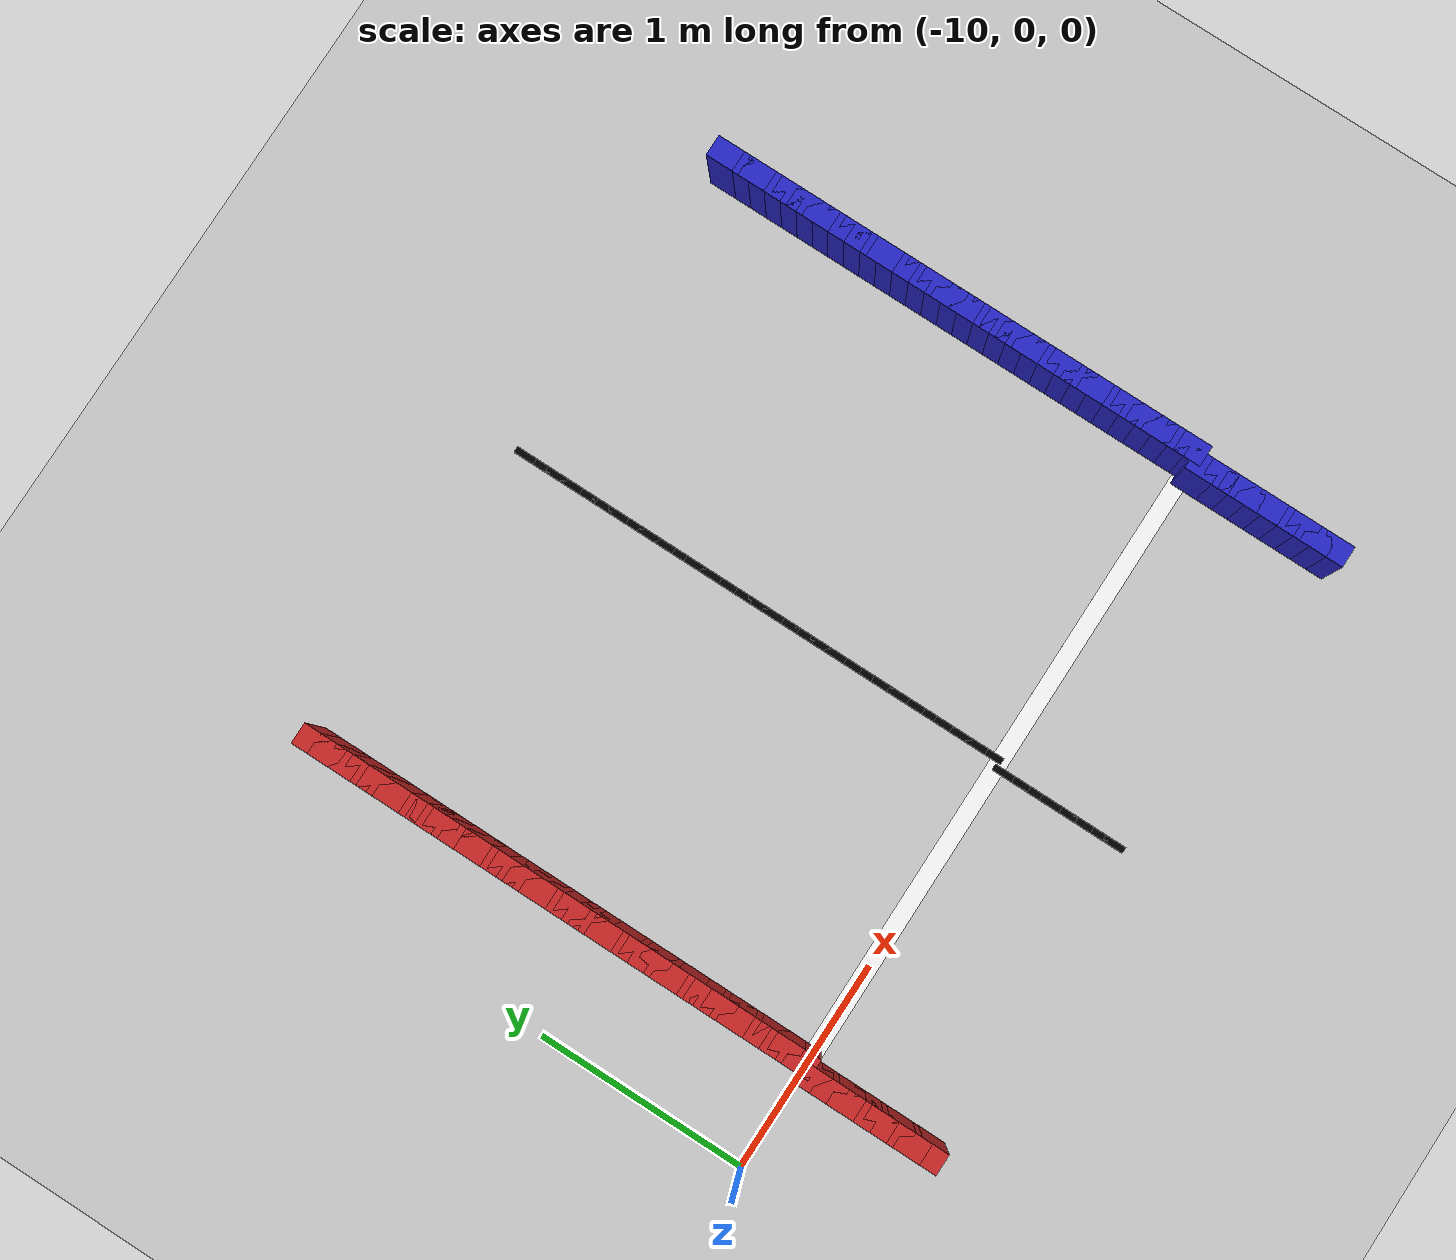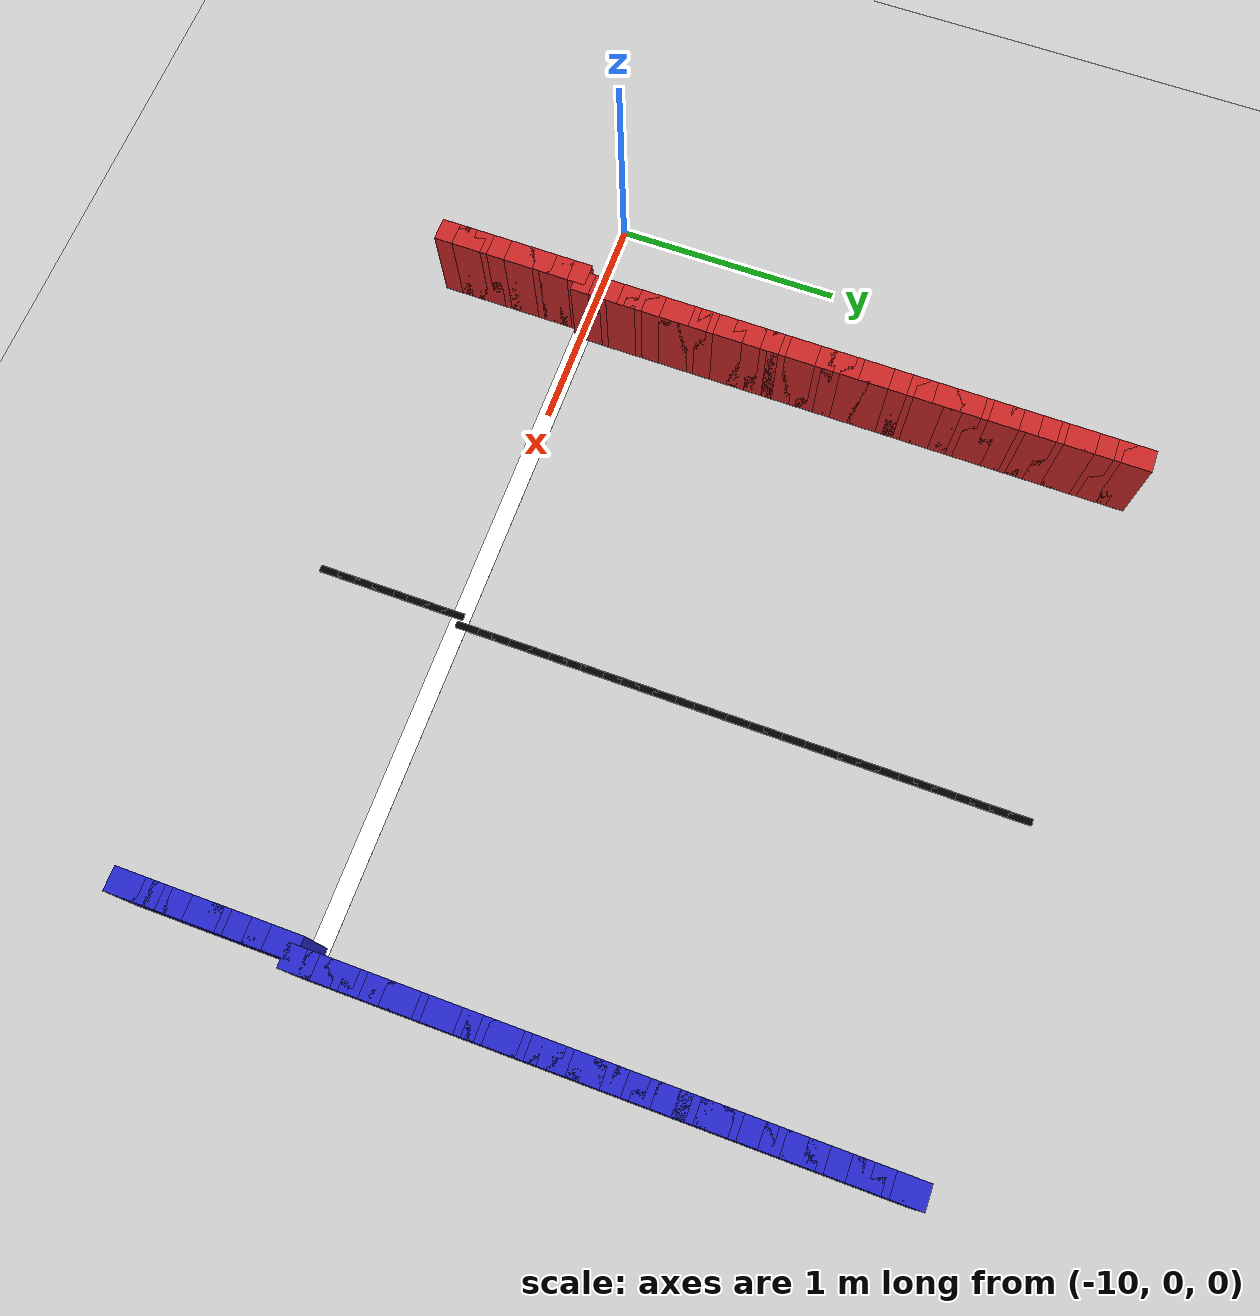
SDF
<sdf version="1.6">
 <world name="new_race_track">
  <include><uri>model://ground_plane</uri></include>
  <include><uri>model://sun</uri></include>
  <model name="iw_0">
   <static>true</static>
   <pose>-6.5000 -0.0400 0.200 0 0 -1.5708</pose>
   <link name="l">
    <collision name="c"><geometry><box><size>0.1300 0.1 0.4</size></box></geometry></collision>
    <visual name="v">
     <geometry><box><size>0.1300 0.1 0.4</size></box></geometry>
     <material><ambient>0.15 0.15 0.8 1</ambient><diffuse>0.15 0.15 0.8 1</diffuse></material>
    </visual>
   </link>
  </model>
  <model name="iw_1">
   <static>true</static>
   <pose>-6.5000 -0.1200 0.200 0 0 -1.5708</pose>
   <link name="l">
    <collision name="c"><geometry><box><size>0.1300 0.1 0.4</size></box></geometry></collision>
    <visual name="v">
     <geometry><box><size>0.1300 0.1 0.4</size></box></geometry>
     <material><ambient>0.15 0.15 0.8 1</ambient><diffuse>0.15 0.15 0.8 1</diffuse></material>
    </visual>
   </link>
  </model>
  <model name="iw_2">
   <static>true</static>
   <pose>-6.5000 -0.2000 0.200 0 0 -1.5708</pose>
   <link name="l">
    <collision name="c"><geometry><box><size>0.1300 0.1 0.4</size></box></geometry></collision>
    <visual name="v">
     <geometry><box><size>0.1300 0.1 0.4</size></box></geometry>
     <material><ambient>0.15 0.15 0.8 1</ambient><diffuse>0.15 0.15 0.8 1</diffuse></material>
    </visual>
   </link>
  </model>
  <model name="iw_3">
   <static>true</static>
   <pose>-6.5000 -0.2800 0.200 0 0 -1.5708</pose>
   <link name="l">
    <collision name="c"><geometry><box><size>0.1300 0.1 0.4</size></box></geometry></collision>
    <visual name="v">
     <geometry><box><size>0.1300 0.1 0.4</size></box></geometry>
     <material><ambient>0.15 0.15 0.8 1</ambient><diffuse>0.15 0.15 0.8 1</diffuse></material>
    </visual>
   </link>
  </model>
  <model name="iw_4">
   <static>true</static>
   <pose>-6.5000 -0.3600 0.200 0 0 -1.5708</pose>
   <link name="l">
    <collision name="c"><geometry><box><size>0.1300 0.1 0.4</size></box></geometry></collision>
    <visual name="v">
     <geometry><box><size>0.1300 0.1 0.4</size></box></geometry>
     <material><ambient>0.15 0.15 0.8 1</ambient><diffuse>0.15 0.15 0.8 1</diffuse></material>
    </visual>
   </link>
  </model>
  <model name="iw_5">
   <static>true</static>
   <pose>-6.5000 -0.4400 0.200 0 0 -1.5708</pose>
   <link name="l">
    <collision name="c"><geometry><box><size>0.1300 0.1 0.4</size></box></geometry></collision>
    <visual name="v">
     <geometry><box><size>0.1300 0.1 0.4</size></box></geometry>
     <material><ambient>0.15 0.15 0.8 1</ambient><diffuse>0.15 0.15 0.8 1</diffuse></material>
    </visual>
   </link>
  </model>
  <model name="iw_6">
   <static>true</static>
   <pose>-6.5000 -0.5200 0.200 0 0 -1.5708</pose>
   <link name="l">
    <collision name="c"><geometry><box><size>0.1300 0.1 0.4</size></box></geometry></collision>
    <visual name="v">
     <geometry><box><size>0.1300 0.1 0.4</size></box></geometry>
     <material><ambient>0.15 0.15 0.8 1</ambient><diffuse>0.15 0.15 0.8 1</diffuse></material>
    </visual>
   </link>
  </model>
  <model name="iw_7">
   <static>true</static>
   <pose>-6.5000 -0.6000 0.200 0 0 -1.5708</pose>
   <link name="l">
    <collision name="c"><geometry><box><size>0.1300 0.1 0.4</size></box></geometry></collision>
    <visual name="v">
     <geometry><box><size>0.1300 0.1 0.4</size></box></geometry>
     <material><ambient>0.15 0.15 0.8 1</ambient><diffuse>0.15 0.15 0.8 1</diffuse></material>
    </visual>
   </link>
  </model>
  <model name="iw_8">
   <static>true</static>
   <pose>-6.5000 -0.6800 0.200 0 0 -1.5708</pose>
   <link name="l">
    <collision name="c"><geometry><box><size>0.1300 0.1 0.4</size></box></geometry></collision>
    <visual name="v">
     <geometry><box><size>0.1300 0.1 0.4</size></box></geometry>
     <material><ambient>0.15 0.15 0.8 1</ambient><diffuse>0.15 0.15 0.8 1</diffuse></material>
    </visual>
   </link>
  </model>
  <model name="iw_753">
   <static>true</static>
   <pose>-6.4621 2.3600 0.200 0 0 -1.5708</pose>
   <link name="l">
    <collision name="c"><geometry><box><size>0.1300 0.1 0.4</size></box></geometry></collision>
    <visual name="v">
     <geometry><box><size>0.1300 0.1 0.4</size></box></geometry>
     <material><ambient>0.15 0.15 0.8 1</ambient><diffuse>0.15 0.15 0.8 1</diffuse></material>
    </visual>
   </link>
  </model>
  <model name="iw_754">
   <static>true</static>
   <pose>-6.4621 2.2800 0.200 0 0 -1.5708</pose>
   <link name="l">
    <collision name="c"><geometry><box><size>0.1300 0.1 0.4</size></box></geometry></collision>
    <visual name="v">
     <geometry><box><size>0.1300 0.1 0.4</size></box></geometry>
     <material><ambient>0.15 0.15 0.8 1</ambient><diffuse>0.15 0.15 0.8 1</diffuse></material>
    </visual>
   </link>
  </model>
  <model name="iw_755">
   <static>true</static>
   <pose>-6.4621 2.2000 0.200 0 0 -1.5708</pose>
   <link name="l">
    <collision name="c"><geometry><box><size>0.1300 0.1 0.4</size></box></geometry></collision>
    <visual name="v">
     <geometry><box><size>0.1300 0.1 0.4</size></box></geometry>
     <material><ambient>0.15 0.15 0.8 1</ambient><diffuse>0.15 0.15 0.8 1</diffuse></material>
    </visual>
   </link>
  </model>
  <model name="iw_756">
   <static>true</static>
   <pose>-6.4621 2.1200 0.200 0 0 -1.5708</pose>
   <link name="l">
    <collision name="c"><geometry><box><size>0.1300 0.1 0.4</size></box></geometry></collision>
    <visual name="v">
     <geometry><box><size>0.1300 0.1 0.4</size></box></geometry>
     <material><ambient>0.15 0.15 0.8 1</ambient><diffuse>0.15 0.15 0.8 1</diffuse></material>
    </visual>
   </link>
  </model>
  <model name="iw_757">
   <static>true</static>
   <pose>-6.4621 2.0400 0.200 0 0 -1.5708</pose>
   <link name="l">
    <collision name="c"><geometry><box><size>0.1300 0.1 0.4</size></box></geometry></collision>
    <visual name="v">
     <geometry><box><size>0.1300 0.1 0.4</size></box></geometry>
     <material><ambient>0.15 0.15 0.8 1</ambient><diffuse>0.15 0.15 0.8 1</diffuse></material>
    </visual>
   </link>
  </model>
  <model name="iw_758">
   <static>true</static>
   <pose>-6.4621 1.9600 0.200 0 0 -1.5708</pose>
   <link name="l">
    <collision name="c"><geometry><box><size>0.1300 0.1 0.4</size></box></geometry></collision>
    <visual name="v">
     <geometry><box><size>0.1300 0.1 0.4</size></box></geometry>
     <material><ambient>0.15 0.15 0.8 1</ambient><diffuse>0.15 0.15 0.8 1</diffuse></material>
    </visual>
   </link>
  </model>
  <model name="iw_759">
   <static>true</static>
   <pose>-6.4621 1.8800 0.200 0 0 -1.5708</pose>
   <link name="l">
    <collision name="c"><geometry><box><size>0.1300 0.1 0.4</size></box></geometry></collision>
    <visual name="v">
     <geometry><box><size>0.1300 0.1 0.4</size></box></geometry>
     <material><ambient>0.15 0.15 0.8 1</ambient><diffuse>0.15 0.15 0.8 1</diffuse></material>
    </visual>
   </link>
  </model>
  <model name="iw_760">
   <static>true</static>
   <pose>-6.4621 1.8000 0.200 0 0 -1.5708</pose>
   <link name="l">
    <collision name="c"><geometry><box><size>0.1300 0.1 0.4</size></box></geometry></collision>
    <visual name="v">
     <geometry><box><size>0.1300 0.1 0.4</size></box></geometry>
     <material><ambient>0.15 0.15 0.8 1</ambient><diffuse>0.15 0.15 0.8 1</diffuse></material>
    </visual>
   </link>
  </model>
  <model name="iw_761">
   <static>true</static>
   <pose>-6.4621 1.7200 0.200 0 0 -1.5708</pose>
   <link name="l">
    <collision name="c"><geometry><box><size>0.1300 0.1 0.4</size></box></geometry></collision>
    <visual name="v">
     <geometry><box><size>0.1300 0.1 0.4</size></box></geometry>
     <material><ambient>0.15 0.15 0.8 1</ambient><diffuse>0.15 0.15 0.8 1</diffuse></material>
    </visual>
   </link>
  </model>
  <model name="iw_762">
   <static>true</static>
   <pose>-6.4621 1.6400 0.200 0 0 -1.5708</pose>
   <link name="l">
    <collision name="c"><geometry><box><size>0.1300 0.1 0.4</size></box></geometry></collision>
    <visual name="v">
     <geometry><box><size>0.1300 0.1 0.4</size></box></geometry>
     <material><ambient>0.15 0.15 0.8 1</ambient><diffuse>0.15 0.15 0.8 1</diffuse></material>
    </visual>
   </link>
  </model>
  <model name="iw_763">
   <static>true</static>
   <pose>-6.4621 1.5600 0.200 0 0 -1.5708</pose>
   <link name="l">
    <collision name="c"><geometry><box><size>0.1300 0.1 0.4</size></box></geometry></collision>
    <visual name="v">
     <geometry><box><size>0.1300 0.1 0.4</size></box></geometry>
     <material><ambient>0.15 0.15 0.8 1</ambient><diffuse>0.15 0.15 0.8 1</diffuse></material>
    </visual>
   </link>
  </model>
  <model name="iw_764">
   <static>true</static>
   <pose>-6.4621 1.4800 0.200 0 0 -1.5708</pose>
   <link name="l">
    <collision name="c"><geometry><box><size>0.1300 0.1 0.4</size></box></geometry></collision>
    <visual name="v">
     <geometry><box><size>0.1300 0.1 0.4</size></box></geometry>
     <material><ambient>0.15 0.15 0.8 1</ambient><diffuse>0.15 0.15 0.8 1</diffuse></material>
    </visual>
   </link>
  </model>
  <model name="iw_765">
   <static>true</static>
   <pose>-6.4621 1.4000 0.200 0 0 -1.5708</pose>
   <link name="l">
    <collision name="c"><geometry><box><size>0.1300 0.1 0.4</size></box></geometry></collision>
    <visual name="v">
     <geometry><box><size>0.1300 0.1 0.4</size></box></geometry>
     <material><ambient>0.15 0.15 0.8 1</ambient><diffuse>0.15 0.15 0.8 1</diffuse></material>
    </visual>
   </link>
  </model>
  <model name="iw_766">
   <static>true</static>
   <pose>-6.4621 1.3200 0.200 0 0 -1.5708</pose>
   <link name="l">
    <collision name="c"><geometry><box><size>0.1300 0.1 0.4</size></box></geometry></collision>
    <visual name="v">
     <geometry><box><size>0.1300 0.1 0.4</size></box></geometry>
     <material><ambient>0.15 0.15 0.8 1</ambient><diffuse>0.15 0.15 0.8 1</diffuse></material>
    </visual>
   </link>
  </model>
  <model name="iw_767">
   <static>true</static>
   <pose>-6.4621 1.2400 0.200 0 0 -1.5708</pose>
   <link name="l">
    <collision name="c"><geometry><box><size>0.1300 0.1 0.4</size></box></geometry></collision>
    <visual name="v">
     <geometry><box><size>0.1300 0.1 0.4</size></box></geometry>
     <material><ambient>0.15 0.15 0.8 1</ambient><diffuse>0.15 0.15 0.8 1</diffuse></material>
    </visual>
   </link>
  </model>
  <model name="iw_768">
   <static>true</static>
   <pose>-6.4621 1.1600 0.200 0 0 -1.5708</pose>
   <link name="l">
    <collision name="c"><geometry><box><size>0.1300 0.1 0.4</size></box></geometry></collision>
    <visual name="v">
     <geometry><box><size>0.1300 0.1 0.4</size></box></geometry>
     <material><ambient>0.15 0.15 0.8 1</ambient><diffuse>0.15 0.15 0.8 1</diffuse></material>
    </visual>
   </link>
  </model>
  <model name="iw_769">
   <static>true</static>
   <pose>-6.4621 1.0800 0.200 0 0 -1.5708</pose>
   <link name="l">
    <collision name="c"><geometry><box><size>0.1300 0.1 0.4</size></box></geometry></collision>
    <visual name="v">
     <geometry><box><size>0.1300 0.1 0.4</size></box></geometry>
     <material><ambient>0.15 0.15 0.8 1</ambient><diffuse>0.15 0.15 0.8 1</diffuse></material>
    </visual>
   </link>
  </model>
  <model name="iw_770">
   <static>true</static>
   <pose>-6.4621 1.0000 0.200 0 0 -1.5708</pose>
   <link name="l">
    <collision name="c"><geometry><box><size>0.1300 0.1 0.4</size></box></geometry></collision>
    <visual name="v">
     <geometry><box><size>0.1300 0.1 0.4</size></box></geometry>
     <material><ambient>0.15 0.15 0.8 1</ambient><diffuse>0.15 0.15 0.8 1</diffuse></material>
    </visual>
   </link>
  </model>
  <model name="iw_771">
   <static>true</static>
   <pose>-6.4621 0.9200 0.200 0 0 -1.5708</pose>
   <link name="l">
    <collision name="c"><geometry><box><size>0.1300 0.1 0.4</size></box></geometry></collision>
    <visual name="v">
     <geometry><box><size>0.1300 0.1 0.4</size></box></geometry>
     <material><ambient>0.15 0.15 0.8 1</ambient><diffuse>0.15 0.15 0.8 1</diffuse></material>
    </visual>
   </link>
  </model>
  <model name="iw_772">
   <static>true</static>
   <pose>-6.4621 0.8400 0.200 0 0 -1.5708</pose>
   <link name="l">
    <collision name="c"><geometry><box><size>0.1300 0.1 0.4</size></box></geometry></collision>
    <visual name="v">
     <geometry><box><size>0.1300 0.1 0.4</size></box></geometry>
     <material><ambient>0.15 0.15 0.8 1</ambient><diffuse>0.15 0.15 0.8 1</diffuse></material>
    </visual>
   </link>
  </model>
  <model name="iw_773">
   <static>true</static>
   <pose>-6.4621 0.7600 0.200 0 0 -1.5708</pose>
   <link name="l">
    <collision name="c"><geometry><box><size>0.1300 0.1 0.4</size></box></geometry></collision>
    <visual name="v">
     <geometry><box><size>0.1300 0.1 0.4</size></box></geometry>
     <material><ambient>0.15 0.15 0.8 1</ambient><diffuse>0.15 0.15 0.8 1</diffuse></material>
    </visual>
   </link>
  </model>
  <model name="iw_774">
   <static>true</static>
   <pose>-6.4621 0.6800 0.200 0 0 -1.5708</pose>
   <link name="l">
    <collision name="c"><geometry><box><size>0.1300 0.1 0.4</size></box></geometry></collision>
    <visual name="v">
     <geometry><box><size>0.1300 0.1 0.4</size></box></geometry>
     <material><ambient>0.15 0.15 0.8 1</ambient><diffuse>0.15 0.15 0.8 1</diffuse></material>
    </visual>
   </link>
  </model>
  <model name="iw_775">
   <static>true</static>
   <pose>-6.4621 0.6000 0.200 0 0 -1.5708</pose>
   <link name="l">
    <collision name="c"><geometry><box><size>0.1300 0.1 0.4</size></box></geometry></collision>
    <visual name="v">
     <geometry><box><size>0.1300 0.1 0.4</size></box></geometry>
     <material><ambient>0.15 0.15 0.8 1</ambient><diffuse>0.15 0.15 0.8 1</diffuse></material>
    </visual>
   </link>
  </model>
  <model name="iw_776">
   <static>true</static>
   <pose>-6.4621 0.5200 0.200 0 0 -1.5708</pose>
   <link name="l">
    <collision name="c"><geometry><box><size>0.1300 0.1 0.4</size></box></geometry></collision>
    <visual name="v">
     <geometry><box><size>0.1300 0.1 0.4</size></box></geometry>
     <material><ambient>0.15 0.15 0.8 1</ambient><diffuse>0.15 0.15 0.8 1</diffuse></material>
    </visual>
   </link>
  </model>
  <model name="iw_777">
   <static>true</static>
   <pose>-6.4621 0.4400 0.200 0 0 -1.5708</pose>
   <link name="l">
    <collision name="c"><geometry><box><size>0.1300 0.1 0.4</size></box></geometry></collision>
    <visual name="v">
     <geometry><box><size>0.1300 0.1 0.4</size></box></geometry>
     <material><ambient>0.15 0.15 0.8 1</ambient><diffuse>0.15 0.15 0.8 1</diffuse></material>
    </visual>
   </link>
  </model>
  <model name="iw_778">
   <static>true</static>
   <pose>-6.4621 0.3600 0.200 0 0 -1.5708</pose>
   <link name="l">
    <collision name="c"><geometry><box><size>0.1300 0.1 0.4</size></box></geometry></collision>
    <visual name="v">
     <geometry><box><size>0.1300 0.1 0.4</size></box></geometry>
     <material><ambient>0.15 0.15 0.8 1</ambient><diffuse>0.15 0.15 0.8 1</diffuse></material>
    </visual>
   </link>
  </model>
  <model name="iw_779">
   <static>true</static>
   <pose>-6.4621 0.2800 0.200 0 0 -1.5708</pose>
   <link name="l">
    <collision name="c"><geometry><box><size>0.1300 0.1 0.4</size></box></geometry></collision>
    <visual name="v">
     <geometry><box><size>0.1300 0.1 0.4</size></box></geometry>
     <material><ambient>0.15 0.15 0.8 1</ambient><diffuse>0.15 0.15 0.8 1</diffuse></material>
    </visual>
   </link>
  </model>
  <model name="iw_780">
   <static>true</static>
   <pose>-6.4621 0.2000 0.200 0 0 -1.5708</pose>
   <link name="l">
    <collision name="c"><geometry><box><size>0.1300 0.1 0.4</size></box></geometry></collision>
    <visual name="v">
     <geometry><box><size>0.1300 0.1 0.4</size></box></geometry>
     <material><ambient>0.15 0.15 0.8 1</ambient><diffuse>0.15 0.15 0.8 1</diffuse></material>
    </visual>
   </link>
  </model>
  <model name="iw_781">
   <static>true</static>
   <pose>-6.4621 0.1200 0.200 0 0 -1.5708</pose>
   <link name="l">
    <collision name="c"><geometry><box><size>0.1300 0.1 0.4</size></box></geometry></collision>
    <visual name="v">
     <geometry><box><size>0.1300 0.1 0.4</size></box></geometry>
     <material><ambient>0.15 0.15 0.8 1</ambient><diffuse>0.15 0.15 0.8 1</diffuse></material>
    </visual>
   </link>
  </model>
  <model name="iw_782">
   <static>true</static>
   <pose>-6.4621 0.0400 0.200 0 0 -1.5708</pose>
   <link name="l">
    <collision name="c"><geometry><box><size>0.1300 0.1 0.4</size></box></geometry></collision>
    <visual name="v">
     <geometry><box><size>0.1300 0.1 0.4</size></box></geometry>
     <material><ambient>0.15 0.15 0.8 1</ambient><diffuse>0.15 0.15 0.8 1</diffuse></material>
    </visual>
   </link>
  </model>
  <model name="ow_0">
   <static>true</static>
   <pose>-9.5000 -0.0400 0.200 0 0 -1.5708</pose>
   <link name="l">
    <collision name="c"><geometry><box><size>0.1300 0.1 0.4</size></box></geometry></collision>
    <visual name="v">
     <geometry><box><size>0.1300 0.1 0.4</size></box></geometry>
     <material><ambient>0.8 0.15 0.15 1</ambient><diffuse>0.8 0.15 0.15 1</diffuse></material>
    </visual>
   </link>
  </model>
  <model name="ow_1">
   <static>true</static>
   <pose>-9.5000 -0.1200 0.200 0 0 -1.5708</pose>
   <link name="l">
    <collision name="c"><geometry><box><size>0.1300 0.1 0.4</size></box></geometry></collision>
    <visual name="v">
     <geometry><box><size>0.1300 0.1 0.4</size></box></geometry>
     <material><ambient>0.8 0.15 0.15 1</ambient><diffuse>0.8 0.15 0.15 1</diffuse></material>
    </visual>
   </link>
  </model>
  <model name="ow_2">
   <static>true</static>
   <pose>-9.5000 -0.2000 0.200 0 0 -1.5708</pose>
   <link name="l">
    <collision name="c"><geometry><box><size>0.1300 0.1 0.4</size></box></geometry></collision>
    <visual name="v">
     <geometry><box><size>0.1300 0.1 0.4</size></box></geometry>
     <material><ambient>0.8 0.15 0.15 1</ambient><diffuse>0.8 0.15 0.15 1</diffuse></material>
    </visual>
   </link>
  </model>
  <model name="ow_3">
   <static>true</static>
   <pose>-9.5000 -0.2800 0.200 0 0 -1.5708</pose>
   <link name="l">
    <collision name="c"><geometry><box><size>0.1300 0.1 0.4</size></box></geometry></collision>
    <visual name="v">
     <geometry><box><size>0.1300 0.1 0.4</size></box></geometry>
     <material><ambient>0.8 0.15 0.15 1</ambient><diffuse>0.8 0.15 0.15 1</diffuse></material>
    </visual>
   </link>
  </model>
  <model name="ow_4">
   <static>true</static>
   <pose>-9.5000 -0.3600 0.200 0 0 -1.5708</pose>
   <link name="l">
    <collision name="c"><geometry><box><size>0.1300 0.1 0.4</size></box></geometry></collision>
    <visual name="v">
     <geometry><box><size>0.1300 0.1 0.4</size></box></geometry>
     <material><ambient>0.8 0.15 0.15 1</ambient><diffuse>0.8 0.15 0.15 1</diffuse></material>
    </visual>
   </link>
  </model>
  <model name="ow_5">
   <static>true</static>
   <pose>-9.5000 -0.4400 0.200 0 0 -1.5708</pose>
   <link name="l">
    <collision name="c"><geometry><box><size>0.1300 0.1 0.4</size></box></geometry></collision>
    <visual name="v">
     <geometry><box><size>0.1300 0.1 0.4</size></box></geometry>
     <material><ambient>0.8 0.15 0.15 1</ambient><diffuse>0.8 0.15 0.15 1</diffuse></material>
    </visual>
   </link>
  </model>
  <model name="ow_6">
   <static>true</static>
   <pose>-9.5000 -0.5200 0.200 0 0 -1.5708</pose>
   <link name="l">
    <collision name="c"><geometry><box><size>0.1300 0.1 0.4</size></box></geometry></collision>
    <visual name="v">
     <geometry><box><size>0.1300 0.1 0.4</size></box></geometry>
     <material><ambient>0.8 0.15 0.15 1</ambient><diffuse>0.8 0.15 0.15 1</diffuse></material>
    </visual>
   </link>
  </model>
  <model name="ow_7">
   <static>true</static>
   <pose>-9.5000 -0.6000 0.200 0 0 -1.5708</pose>
   <link name="l">
    <collision name="c"><geometry><box><size>0.1300 0.1 0.4</size></box></geometry></collision>
    <visual name="v">
     <geometry><box><size>0.1300 0.1 0.4</size></box></geometry>
     <material><ambient>0.8 0.15 0.15 1</ambient><diffuse>0.8 0.15 0.15 1</diffuse></material>
    </visual>
   </link>
  </model>
  <model name="ow_752">
   <static>true</static>
   <pose>-9.4621 2.4400 0.200 0 0 -1.5708</pose>
   <link name="l">
    <collision name="c"><geometry><box><size>0.1300 0.1 0.4</size></box></geometry></collision>
    <visual name="v">
     <geometry><box><size>0.1300 0.1 0.4</size></box></geometry>
     <material><ambient>0.8 0.15 0.15 1</ambient><diffuse>0.8 0.15 0.15 1</diffuse></material>
    </visual>
   </link>
  </model>
  <model name="ow_753">
   <static>true</static>
   <pose>-9.4621 2.3600 0.200 0 0 -1.5708</pose>
   <link name="l">
    <collision name="c"><geometry><box><size>0.1300 0.1 0.4</size></box></geometry></collision>
    <visual name="v">
     <geometry><box><size>0.1300 0.1 0.4</size></box></geometry>
     <material><ambient>0.8 0.15 0.15 1</ambient><diffuse>0.8 0.15 0.15 1</diffuse></material>
    </visual>
   </link>
  </model>
  <model name="ow_754">
   <static>true</static>
   <pose>-9.4621 2.2800 0.200 0 0 -1.5708</pose>
   <link name="l">
    <collision name="c"><geometry><box><size>0.1300 0.1 0.4</size></box></geometry></collision>
    <visual name="v">
     <geometry><box><size>0.1300 0.1 0.4</size></box></geometry>
     <material><ambient>0.8 0.15 0.15 1</ambient><diffuse>0.8 0.15 0.15 1</diffuse></material>
    </visual>
   </link>
  </model>
  <model name="ow_755">
   <static>true</static>
   <pose>-9.4621 2.2000 0.200 0 0 -1.5708</pose>
   <link name="l">
    <collision name="c"><geometry><box><size>0.1300 0.1 0.4</size></box></geometry></collision>
    <visual name="v">
     <geometry><box><size>0.1300 0.1 0.4</size></box></geometry>
     <material><ambient>0.8 0.15 0.15 1</ambient><diffuse>0.8 0.15 0.15 1</diffuse></material>
    </visual>
   </link>
  </model>
  <model name="ow_756">
   <static>true</static>
   <pose>-9.4621 2.1200 0.200 0 0 -1.5708</pose>
   <link name="l">
    <collision name="c"><geometry><box><size>0.1300 0.1 0.4</size></box></geometry></collision>
    <visual name="v">
     <geometry><box><size>0.1300 0.1 0.4</size></box></geometry>
     <material><ambient>0.8 0.15 0.15 1</ambient><diffuse>0.8 0.15 0.15 1</diffuse></material>
    </visual>
   </link>
  </model>
  <model name="ow_757">
   <static>true</static>
   <pose>-9.4621 2.0400 0.200 0 0 -1.5708</pose>
   <link name="l">
    <collision name="c"><geometry><box><size>0.1300 0.1 0.4</size></box></geometry></collision>
    <visual name="v">
     <geometry><box><size>0.1300 0.1 0.4</size></box></geometry>
     <material><ambient>0.8 0.15 0.15 1</ambient><diffuse>0.8 0.15 0.15 1</diffuse></material>
    </visual>
   </link>
  </model>
  <model name="ow_758">
   <static>true</static>
   <pose>-9.4621 1.9600 0.200 0 0 -1.5708</pose>
   <link name="l">
    <collision name="c"><geometry><box><size>0.1300 0.1 0.4</size></box></geometry></collision>
    <visual name="v">
     <geometry><box><size>0.1300 0.1 0.4</size></box></geometry>
     <material><ambient>0.8 0.15 0.15 1</ambient><diffuse>0.8 0.15 0.15 1</diffuse></material>
    </visual>
   </link>
  </model>
  <model name="ow_759">
   <static>true</static>
   <pose>-9.4621 1.8800 0.200 0 0 -1.5708</pose>
   <link name="l">
    <collision name="c"><geometry><box><size>0.1300 0.1 0.4</size></box></geometry></collision>
    <visual name="v">
     <geometry><box><size>0.1300 0.1 0.4</size></box></geometry>
     <material><ambient>0.8 0.15 0.15 1</ambient><diffuse>0.8 0.15 0.15 1</diffuse></material>
    </visual>
   </link>
  </model>
  <model name="ow_760">
   <static>true</static>
   <pose>-9.4621 1.8000 0.200 0 0 -1.5708</pose>
   <link name="l">
    <collision name="c"><geometry><box><size>0.1300 0.1 0.4</size></box></geometry></collision>
    <visual name="v">
     <geometry><box><size>0.1300 0.1 0.4</size></box></geometry>
     <material><ambient>0.8 0.15 0.15 1</ambient><diffuse>0.8 0.15 0.15 1</diffuse></material>
    </visual>
   </link>
  </model>
  <model name="ow_761">
   <static>true</static>
   <pose>-9.4621 1.7200 0.200 0 0 -1.5708</pose>
   <link name="l">
    <collision name="c"><geometry><box><size>0.1300 0.1 0.4</size></box></geometry></collision>
    <visual name="v">
     <geometry><box><size>0.1300 0.1 0.4</size></box></geometry>
     <material><ambient>0.8 0.15 0.15 1</ambient><diffuse>0.8 0.15 0.15 1</diffuse></material>
    </visual>
   </link>
  </model>
  <model name="ow_762">
   <static>true</static>
   <pose>-9.4621 1.6400 0.200 0 0 -1.5708</pose>
   <link name="l">
    <collision name="c"><geometry><box><size>0.1300 0.1 0.4</size></box></geometry></collision>
    <visual name="v">
     <geometry><box><size>0.1300 0.1 0.4</size></box></geometry>
     <material><ambient>0.8 0.15 0.15 1</ambient><diffuse>0.8 0.15 0.15 1</diffuse></material>
    </visual>
   </link>
  </model>
  <model name="ow_763">
   <static>true</static>
   <pose>-9.4621 1.5600 0.200 0 0 -1.5708</pose>
   <link name="l">
    <collision name="c"><geometry><box><size>0.1300 0.1 0.4</size></box></geometry></collision>
    <visual name="v">
     <geometry><box><size>0.1300 0.1 0.4</size></box></geometry>
     <material><ambient>0.8 0.15 0.15 1</ambient><diffuse>0.8 0.15 0.15 1</diffuse></material>
    </visual>
   </link>
  </model>
  <model name="ow_764">
   <static>true</static>
   <pose>-9.4621 1.4800 0.200 0 0 -1.5708</pose>
   <link name="l">
    <collision name="c"><geometry><box><size>0.1300 0.1 0.4</size></box></geometry></collision>
    <visual name="v">
     <geometry><box><size>0.1300 0.1 0.4</size></box></geometry>
     <material><ambient>0.8 0.15 0.15 1</ambient><diffuse>0.8 0.15 0.15 1</diffuse></material>
    </visual>
   </link>
  </model>
  <model name="ow_765">
   <static>true</static>
   <pose>-9.4621 1.4000 0.200 0 0 -1.5708</pose>
   <link name="l">
    <collision name="c"><geometry><box><size>0.1300 0.1 0.4</size></box></geometry></collision>
    <visual name="v">
     <geometry><box><size>0.1300 0.1 0.4</size></box></geometry>
     <material><ambient>0.8 0.15 0.15 1</ambient><diffuse>0.8 0.15 0.15 1</diffuse></material>
    </visual>
   </link>
  </model>
  <model name="ow_766">
   <static>true</static>
   <pose>-9.4621 1.3200 0.200 0 0 -1.5708</pose>
   <link name="l">
    <collision name="c"><geometry><box><size>0.1300 0.1 0.4</size></box></geometry></collision>
    <visual name="v">
     <geometry><box><size>0.1300 0.1 0.4</size></box></geometry>
     <material><ambient>0.8 0.15 0.15 1</ambient><diffuse>0.8 0.15 0.15 1</diffuse></material>
    </visual>
   </link>
  </model>
  <model name="ow_767">
   <static>true</static>
   <pose>-9.4621 1.2400 0.200 0 0 -1.5708</pose>
   <link name="l">
    <collision name="c"><geometry><box><size>0.1300 0.1 0.4</size></box></geometry></collision>
    <visual name="v">
     <geometry><box><size>0.1300 0.1 0.4</size></box></geometry>
     <material><ambient>0.8 0.15 0.15 1</ambient><diffuse>0.8 0.15 0.15 1</diffuse></material>
    </visual>
   </link>
  </model>
  <model name="ow_768">
   <static>true</static>
   <pose>-9.4621 1.1600 0.200 0 0 -1.5708</pose>
   <link name="l">
    <collision name="c"><geometry><box><size>0.1300 0.1 0.4</size></box></geometry></collision>
    <visual name="v">
     <geometry><box><size>0.1300 0.1 0.4</size></box></geometry>
     <material><ambient>0.8 0.15 0.15 1</ambient><diffuse>0.8 0.15 0.15 1</diffuse></material>
    </visual>
   </link>
  </model>
  <model name="ow_769">
   <static>true</static>
   <pose>-9.4621 1.0800 0.200 0 0 -1.5708</pose>
   <link name="l">
    <collision name="c"><geometry><box><size>0.1300 0.1 0.4</size></box></geometry></collision>
    <visual name="v">
     <geometry><box><size>0.1300 0.1 0.4</size></box></geometry>
     <material><ambient>0.8 0.15 0.15 1</ambient><diffuse>0.8 0.15 0.15 1</diffuse></material>
    </visual>
   </link>
  </model>
  <model name="ow_770">
   <static>true</static>
   <pose>-9.4621 1.0000 0.200 0 0 -1.5708</pose>
   <link name="l">
    <collision name="c"><geometry><box><size>0.1300 0.1 0.4</size></box></geometry></collision>
    <visual name="v">
     <geometry><box><size>0.1300 0.1 0.4</size></box></geometry>
     <material><ambient>0.8 0.15 0.15 1</ambient><diffuse>0.8 0.15 0.15 1</diffuse></material>
    </visual>
   </link>
  </model>
  <model name="ow_771">
   <static>true</static>
   <pose>-9.4621 0.9200 0.200 0 0 -1.5708</pose>
   <link name="l">
    <collision name="c"><geometry><box><size>0.1300 0.1 0.4</size></box></geometry></collision>
    <visual name="v">
     <geometry><box><size>0.1300 0.1 0.4</size></box></geometry>
     <material><ambient>0.8 0.15 0.15 1</ambient><diffuse>0.8 0.15 0.15 1</diffuse></material>
    </visual>
   </link>
  </model>
  <model name="ow_772">
   <static>true</static>
   <pose>-9.4621 0.8400 0.200 0 0 -1.5708</pose>
   <link name="l">
    <collision name="c"><geometry><box><size>0.1300 0.1 0.4</size></box></geometry></collision>
    <visual name="v">
     <geometry><box><size>0.1300 0.1 0.4</size></box></geometry>
     <material><ambient>0.8 0.15 0.15 1</ambient><diffuse>0.8 0.15 0.15 1</diffuse></material>
    </visual>
   </link>
  </model>
  <model name="ow_773">
   <static>true</static>
   <pose>-9.4621 0.7600 0.200 0 0 -1.5708</pose>
   <link name="l">
    <collision name="c"><geometry><box><size>0.1300 0.1 0.4</size></box></geometry></collision>
    <visual name="v">
     <geometry><box><size>0.1300 0.1 0.4</size></box></geometry>
     <material><ambient>0.8 0.15 0.15 1</ambient><diffuse>0.8 0.15 0.15 1</diffuse></material>
    </visual>
   </link>
  </model>
  <model name="ow_774">
   <static>true</static>
   <pose>-9.4621 0.6800 0.200 0 0 -1.5708</pose>
   <link name="l">
    <collision name="c"><geometry><box><size>0.1300 0.1 0.4</size></box></geometry></collision>
    <visual name="v">
     <geometry><box><size>0.1300 0.1 0.4</size></box></geometry>
     <material><ambient>0.8 0.15 0.15 1</ambient><diffuse>0.8 0.15 0.15 1</diffuse></material>
    </visual>
   </link>
  </model>
  <model name="ow_775">
   <static>true</static>
   <pose>-9.4621 0.6000 0.200 0 0 -1.5708</pose>
   <link name="l">
    <collision name="c"><geometry><box><size>0.1300 0.1 0.4</size></box></geometry></collision>
    <visual name="v">
     <geometry><box><size>0.1300 0.1 0.4</size></box></geometry>
     <material><ambient>0.8 0.15 0.15 1</ambient><diffuse>0.8 0.15 0.15 1</diffuse></material>
    </visual>
   </link>
  </model>
  <model name="ow_776">
   <static>true</static>
   <pose>-9.4621 0.5200 0.200 0 0 -1.5708</pose>
   <link name="l">
    <collision name="c"><geometry><box><size>0.1300 0.1 0.4</size></box></geometry></collision>
    <visual name="v">
     <geometry><box><size>0.1300 0.1 0.4</size></box></geometry>
     <material><ambient>0.8 0.15 0.15 1</ambient><diffuse>0.8 0.15 0.15 1</diffuse></material>
    </visual>
   </link>
  </model>
  <model name="ow_777">
   <static>true</static>
   <pose>-9.4621 0.4400 0.200 0 0 -1.5708</pose>
   <link name="l">
    <collision name="c"><geometry><box><size>0.1300 0.1 0.4</size></box></geometry></collision>
    <visual name="v">
     <geometry><box><size>0.1300 0.1 0.4</size></box></geometry>
     <material><ambient>0.8 0.15 0.15 1</ambient><diffuse>0.8 0.15 0.15 1</diffuse></material>
    </visual>
   </link>
  </model>
  <model name="ow_778">
   <static>true</static>
   <pose>-9.4621 0.3600 0.200 0 0 -1.5708</pose>
   <link name="l">
    <collision name="c"><geometry><box><size>0.1300 0.1 0.4</size></box></geometry></collision>
    <visual name="v">
     <geometry><box><size>0.1300 0.1 0.4</size></box></geometry>
     <material><ambient>0.8 0.15 0.15 1</ambient><diffuse>0.8 0.15 0.15 1</diffuse></material>
    </visual>
   </link>
  </model>
  <model name="ow_779">
   <static>true</static>
   <pose>-9.4621 0.2800 0.200 0 0 -1.5708</pose>
   <link name="l">
    <collision name="c"><geometry><box><size>0.1300 0.1 0.4</size></box></geometry></collision>
    <visual name="v">
     <geometry><box><size>0.1300 0.1 0.4</size></box></geometry>
     <material><ambient>0.8 0.15 0.15 1</ambient><diffuse>0.8 0.15 0.15 1</diffuse></material>
    </visual>
   </link>
  </model>
  <model name="ow_780">
   <static>true</static>
   <pose>-9.4621 0.2000 0.200 0 0 -1.5708</pose>
   <link name="l">
    <collision name="c"><geometry><box><size>0.1300 0.1 0.4</size></box></geometry></collision>
    <visual name="v">
     <geometry><box><size>0.1300 0.1 0.4</size></box></geometry>
     <material><ambient>0.8 0.15 0.15 1</ambient><diffuse>0.8 0.15 0.15 1</diffuse></material>
    </visual>
   </link>
  </model>
  <model name="ow_781">
   <static>true</static>
   <pose>-9.4621 0.1200 0.200 0 0 -1.5708</pose>
   <link name="l">
    <collision name="c"><geometry><box><size>0.1300 0.1 0.4</size></box></geometry></collision>
    <visual name="v">
     <geometry><box><size>0.1300 0.1 0.4</size></box></geometry>
     <material><ambient>0.8 0.15 0.15 1</ambient><diffuse>0.8 0.15 0.15 1</diffuse></material>
    </visual>
   </link>
  </model>
  <model name="ow_782">
   <static>true</static>
   <pose>-9.4621 0.0400 0.200 0 0 -1.5708</pose>
   <link name="l">
    <collision name="c"><geometry><box><size>0.1300 0.1 0.4</size></box></geometry></collision>
    <visual name="v">
     <geometry><box><size>0.1300 0.1 0.4</size></box></geometry>
     <material><ambient>0.8 0.15 0.15 1</ambient><diffuse>0.8 0.15 0.15 1</diffuse></material>
    </visual>
   </link>
  </model>
  <model name="line_0">
   <static>true</static>
   <pose>-8.0000 -0.0400 0.002 0 0 -1.5708</pose>
   <link name="l">
    <visual name="v">
     <geometry><box><size>0.1000 0.03 0.002</size></box></geometry>
     <material><ambient>0 0 0 1</ambient><diffuse>0 0 0 1</diffuse></material>
    </visual>
   </link>
  </model>
  <model name="line_1">
   <static>true</static>
   <pose>-8.0000 -0.1200 0.002 0 0 -1.5708</pose>
   <link name="l">
    <visual name="v">
     <geometry><box><size>0.1000 0.03 0.002</size></box></geometry>
     <material><ambient>0 0 0 1</ambient><diffuse>0 0 0 1</diffuse></material>
    </visual>
   </link>
  </model>
  <model name="line_2">
   <static>true</static>
   <pose>-8.0000 -0.2000 0.002 0 0 -1.5708</pose>
   <link name="l">
    <visual name="v">
     <geometry><box><size>0.1000 0.03 0.002</size></box></geometry>
     <material><ambient>0 0 0 1</ambient><diffuse>0 0 0 1</diffuse></material>
    </visual>
   </link>
  </model>
  <model name="line_3">
   <static>true</static>
   <pose>-8.0000 -0.2800 0.002 0 0 -1.5708</pose>
   <link name="l">
    <visual name="v">
     <geometry><box><size>0.1000 0.03 0.002</size></box></geometry>
     <material><ambient>0 0 0 1</ambient><diffuse>0 0 0 1</diffuse></material>
    </visual>
   </link>
  </model>
  <model name="line_4">
   <static>true</static>
   <pose>-8.0000 -0.3600 0.002 0 0 -1.5708</pose>
   <link name="l">
    <visual name="v">
     <geometry><box><size>0.1000 0.03 0.002</size></box></geometry>
     <material><ambient>0 0 0 1</ambient><diffuse>0 0 0 1</diffuse></material>
    </visual>
   </link>
  </model>
  <model name="line_5">
   <static>true</static>
   <pose>-8.0000 -0.4400 0.002 0 0 -1.5708</pose>
   <link name="l">
    <visual name="v">
     <geometry><box><size>0.1000 0.03 0.002</size></box></geometry>
     <material><ambient>0 0 0 1</ambient><diffuse>0 0 0 1</diffuse></material>
    </visual>
   </link>
  </model>
  <model name="line_6">
   <static>true</static>
   <pose>-8.0000 -0.5200 0.002 0 0 -1.5708</pose>
   <link name="l">
    <visual name="v">
     <geometry><box><size>0.1000 0.03 0.002</size></box></geometry>
     <material><ambient>0 0 0 1</ambient><diffuse>0 0 0 1</diffuse></material>
    </visual>
   </link>
  </model>
  <model name="line_7">
   <static>true</static>
   <pose>-8.0000 -0.6000 0.002 0 0 -1.5708</pose>
   <link name="l">
    <visual name="v">
     <geometry><box><size>0.1000 0.03 0.002</size></box></geometry>
     <material><ambient>0 0 0 1</ambient><diffuse>0 0 0 1</diffuse></material>
    </visual>
   </link>
  </model>
  <model name="line_752">
   <static>true</static>
   <pose>-7.9621 2.4400 0.002 0 0 -1.5708</pose>
   <link name="l">
    <visual name="v">
     <geometry><box><size>0.1000 0.03 0.002</size></box></geometry>
     <material><ambient>0 0 0 1</ambient><diffuse>0 0 0 1</diffuse></material>
    </visual>
   </link>
  </model>
  <model name="line_753">
   <static>true</static>
   <pose>-7.9621 2.3600 0.002 0 0 -1.5708</pose>
   <link name="l">
    <visual name="v">
     <geometry><box><size>0.1000 0.03 0.002</size></box></geometry>
     <material><ambient>0 0 0 1</ambient><diffuse>0 0 0 1</diffuse></material>
    </visual>
   </link>
  </model>
  <model name="line_754">
   <static>true</static>
   <pose>-7.9621 2.2800 0.002 0 0 -1.5708</pose>
   <link name="l">
    <visual name="v">
     <geometry><box><size>0.1000 0.03 0.002</size></box></geometry>
     <material><ambient>0 0 0 1</ambient><diffuse>0 0 0 1</diffuse></material>
    </visual>
   </link>
  </model>
  <model name="line_755">
   <static>true</static>
   <pose>-7.9621 2.2000 0.002 0 0 -1.5708</pose>
   <link name="l">
    <visual name="v">
     <geometry><box><size>0.1000 0.03 0.002</size></box></geometry>
     <material><ambient>0 0 0 1</ambient><diffuse>0 0 0 1</diffuse></material>
    </visual>
   </link>
  </model>
  <model name="line_756">
   <static>true</static>
   <pose>-7.9621 2.1200 0.002 0 0 -1.5708</pose>
   <link name="l">
    <visual name="v">
     <geometry><box><size>0.1000 0.03 0.002</size></box></geometry>
     <material><ambient>0 0 0 1</ambient><diffuse>0 0 0 1</diffuse></material>
    </visual>
   </link>
  </model>
  <model name="line_757">
   <static>true</static>
   <pose>-7.9621 2.0400 0.002 0 0 -1.5708</pose>
   <link name="l">
    <visual name="v">
     <geometry><box><size>0.1000 0.03 0.002</size></box></geometry>
     <material><ambient>0 0 0 1</ambient><diffuse>0 0 0 1</diffuse></material>
    </visual>
   </link>
  </model>
  <model name="line_758">
   <static>true</static>
   <pose>-7.9621 1.9600 0.002 0 0 -1.5708</pose>
   <link name="l">
    <visual name="v">
     <geometry><box><size>0.1000 0.03 0.002</size></box></geometry>
     <material><ambient>0 0 0 1</ambient><diffuse>0 0 0 1</diffuse></material>
    </visual>
   </link>
  </model>
  <model name="line_759">
   <static>true</static>
   <pose>-7.9621 1.8800 0.002 0 0 -1.5708</pose>
   <link name="l">
    <visual name="v">
     <geometry><box><size>0.1000 0.03 0.002</size></box></geometry>
     <material><ambient>0 0 0 1</ambient><diffuse>0 0 0 1</diffuse></material>
    </visual>
   </link>
  </model>
  <model name="line_760">
   <static>true</static>
   <pose>-7.9621 1.8000 0.002 0 0 -1.5708</pose>
   <link name="l">
    <visual name="v">
     <geometry><box><size>0.1000 0.03 0.002</size></box></geometry>
     <material><ambient>0 0 0 1</ambient><diffuse>0 0 0 1</diffuse></material>
    </visual>
   </link>
  </model>
  <model name="line_761">
   <static>true</static>
   <pose>-7.9621 1.7200 0.002 0 0 -1.5708</pose>
   <link name="l">
    <visual name="v">
     <geometry><box><size>0.1000 0.03 0.002</size></box></geometry>
     <material><ambient>0 0 0 1</ambient><diffuse>0 0 0 1</diffuse></material>
    </visual>
   </link>
  </model>
  <model name="line_762">
   <static>true</static>
   <pose>-7.9621 1.6400 0.002 0 0 -1.5708</pose>
   <link name="l">
    <visual name="v">
     <geometry><box><size>0.1000 0.03 0.002</size></box></geometry>
     <material><ambient>0 0 0 1</ambient><diffuse>0 0 0 1</diffuse></material>
    </visual>
   </link>
  </model>
  <model name="line_763">
   <static>true</static>
   <pose>-7.9621 1.5600 0.002 0 0 -1.5708</pose>
   <link name="l">
    <visual name="v">
     <geometry><box><size>0.1000 0.03 0.002</size></box></geometry>
     <material><ambient>0 0 0 1</ambient><diffuse>0 0 0 1</diffuse></material>
    </visual>
   </link>
  </model>
  <model name="line_764">
   <static>true</static>
   <pose>-7.9621 1.4800 0.002 0 0 -1.5708</pose>
   <link name="l">
    <visual name="v">
     <geometry><box><size>0.1000 0.03 0.002</size></box></geometry>
     <material><ambient>0 0 0 1</ambient><diffuse>0 0 0 1</diffuse></material>
    </visual>
   </link>
  </model>
  <model name="line_765">
   <static>true</static>
   <pose>-7.9621 1.4000 0.002 0 0 -1.5708</pose>
   <link name="l">
    <visual name="v">
     <geometry><box><size>0.1000 0.03 0.002</size></box></geometry>
     <material><ambient>0 0 0 1</ambient><diffuse>0 0 0 1</diffuse></material>
    </visual>
   </link>
  </model>
  <model name="line_766">
   <static>true</static>
   <pose>-7.9621 1.3200 0.002 0 0 -1.5708</pose>
   <link name="l">
    <visual name="v">
     <geometry><box><size>0.1000 0.03 0.002</size></box></geometry>
     <material><ambient>0 0 0 1</ambient><diffuse>0 0 0 1</diffuse></material>
    </visual>
   </link>
  </model>
  <model name="line_767">
   <static>true</static>
   <pose>-7.9621 1.2400 0.002 0 0 -1.5708</pose>
   <link name="l">
    <visual name="v">
     <geometry><box><size>0.1000 0.03 0.002</size></box></geometry>
     <material><ambient>0 0 0 1</ambient><diffuse>0 0 0 1</diffuse></material>
    </visual>
   </link>
  </model>
  <model name="line_768">
   <static>true</static>
   <pose>-7.9621 1.1600 0.002 0 0 -1.5708</pose>
   <link name="l">
    <visual name="v">
     <geometry><box><size>0.1000 0.03 0.002</size></box></geometry>
     <material><ambient>0 0 0 1</ambient><diffuse>0 0 0 1</diffuse></material>
    </visual>
   </link>
  </model>
  <model name="line_769">
   <static>true</static>
   <pose>-7.9621 1.0800 0.002 0 0 -1.5708</pose>
   <link name="l">
    <visual name="v">
     <geometry><box><size>0.1000 0.03 0.002</size></box></geometry>
     <material><ambient>0 0 0 1</ambient><diffuse>0 0 0 1</diffuse></material>
    </visual>
   </link>
  </model>
  <model name="line_770">
   <static>true</static>
   <pose>-7.9621 1.0000 0.002 0 0 -1.5708</pose>
   <link name="l">
    <visual name="v">
     <geometry><box><size>0.1000 0.03 0.002</size></box></geometry>
     <material><ambient>0 0 0 1</ambient><diffuse>0 0 0 1</diffuse></material>
    </visual>
   </link>
  </model>
  <model name="line_771">
   <static>true</static>
   <pose>-7.9621 0.9200 0.002 0 0 -1.5708</pose>
   <link name="l">
    <visual name="v">
     <geometry><box><size>0.1000 0.03 0.002</size></box></geometry>
     <material><ambient>0 0 0 1</ambient><diffuse>0 0 0 1</diffuse></material>
    </visual>
   </link>
  </model>
  <model name="line_772">
   <static>true</static>
   <pose>-7.9621 0.8400 0.002 0 0 -1.5708</pose>
   <link name="l">
    <visual name="v">
     <geometry><box><size>0.1000 0.03 0.002</size></box></geometry>
     <material><ambient>0 0 0 1</ambient><diffuse>0 0 0 1</diffuse></material>
    </visual>
   </link>
  </model>
  <model name="line_773">
   <static>true</static>
   <pose>-7.9621 0.7600 0.002 0 0 -1.5708</pose>
   <link name="l">
    <visual name="v">
     <geometry><box><size>0.1000 0.03 0.002</size></box></geometry>
     <material><ambient>0 0 0 1</ambient><diffuse>0 0 0 1</diffuse></material>
    </visual>
   </link>
  </model>
  <model name="line_774">
   <static>true</static>
   <pose>-7.9621 0.6800 0.002 0 0 -1.5708</pose>
   <link name="l">
    <visual name="v">
     <geometry><box><size>0.1000 0.03 0.002</size></box></geometry>
     <material><ambient>0 0 0 1</ambient><diffuse>0 0 0 1</diffuse></material>
    </visual>
   </link>
  </model>
  <model name="line_775">
   <static>true</static>
   <pose>-7.9621 0.6000 0.002 0 0 -1.5708</pose>
   <link name="l">
    <visual name="v">
     <geometry><box><size>0.1000 0.03 0.002</size></box></geometry>
     <material><ambient>0 0 0 1</ambient><diffuse>0 0 0 1</diffuse></material>
    </visual>
   </link>
  </model>
  <model name="line_776">
   <static>true</static>
   <pose>-7.9621 0.5200 0.002 0 0 -1.5708</pose>
   <link name="l">
    <visual name="v">
     <geometry><box><size>0.1000 0.03 0.002</size></box></geometry>
     <material><ambient>0 0 0 1</ambient><diffuse>0 0 0 1</diffuse></material>
    </visual>
   </link>
  </model>
  <model name="line_777">
   <static>true</static>
   <pose>-7.9621 0.4400 0.002 0 0 -1.5708</pose>
   <link name="l">
    <visual name="v">
     <geometry><box><size>0.1000 0.03 0.002</size></box></geometry>
     <material><ambient>0 0 0 1</ambient><diffuse>0 0 0 1</diffuse></material>
    </visual>
   </link>
  </model>
  <model name="line_778">
   <static>true</static>
   <pose>-7.9621 0.3600 0.002 0 0 -1.5708</pose>
   <link name="l">
    <visual name="v">
     <geometry><box><size>0.1000 0.03 0.002</size></box></geometry>
     <material><ambient>0 0 0 1</ambient><diffuse>0 0 0 1</diffuse></material>
    </visual>
   </link>
  </model>
  <model name="line_779">
   <static>true</static>
   <pose>-7.9621 0.2800 0.002 0 0 -1.5708</pose>
   <link name="l">
    <visual name="v">
     <geometry><box><size>0.1000 0.03 0.002</size></box></geometry>
     <material><ambient>0 0 0 1</ambient><diffuse>0 0 0 1</diffuse></material>
    </visual>
   </link>
  </model>
  <model name="line_780">
   <static>true</static>
   <pose>-7.9621 0.2000 0.002 0 0 -1.5708</pose>
   <link name="l">
    <visual name="v">
     <geometry><box><size>0.1000 0.03 0.002</size></box></geometry>
     <material><ambient>0 0 0 1</ambient><diffuse>0 0 0 1</diffuse></material>
    </visual>
   </link>
  </model>
  <model name="line_781">
   <static>true</static>
   <pose>-7.9621 0.1200 0.002 0 0 -1.5708</pose>
   <link name="l">
    <visual name="v">
     <geometry><box><size>0.1000 0.03 0.002</size></box></geometry>
     <material><ambient>0 0 0 1</ambient><diffuse>0 0 0 1</diffuse></material>
    </visual>
   </link>
  </model>
  <model name="line_782">
   <static>true</static>
   <pose>-7.9621 0.0400 0.002 0 0 -1.5708</pose>
   <link name="l">
    <visual name="v">
     <geometry><box><size>0.1000 0.03 0.002</size></box></geometry>
     <material><ambient>0 0 0 1</ambient><diffuse>0 0 0 1</diffuse></material>
    </visual>
   </link>
  </model>
  <model name="start_line">
   <static>true</static>
   <pose>-8.0000 0.0000 0.001 0 0 0</pose>
   <link name="l">
    <visual name="v">
     <geometry><box><size>3.0 0.08 0.001</size></box></geometry>
     <material><ambient>1 1 1 1</ambient><diffuse>1 1 1 1</diffuse></material>
    </visual>
   </link>
  </model>
 </world>
</sdf>
